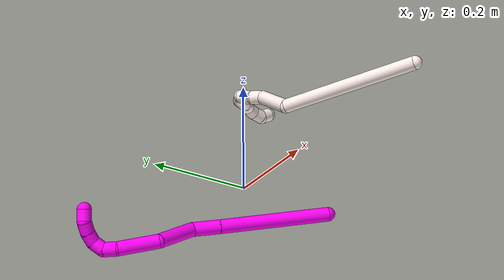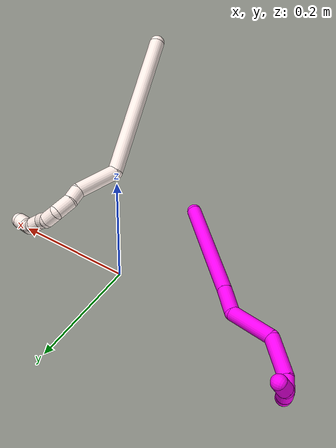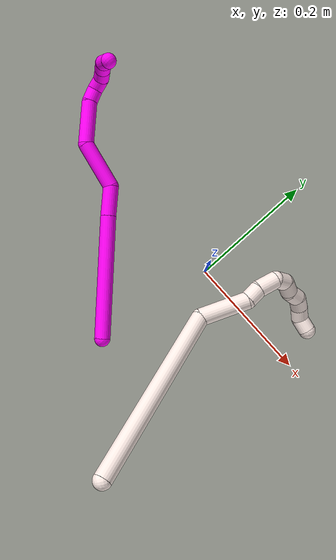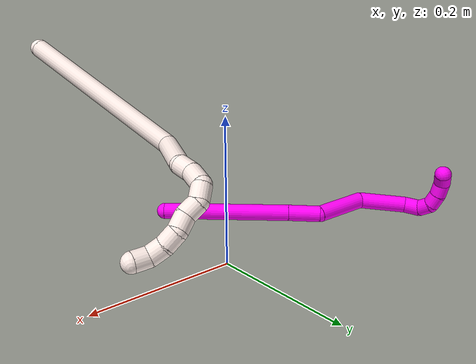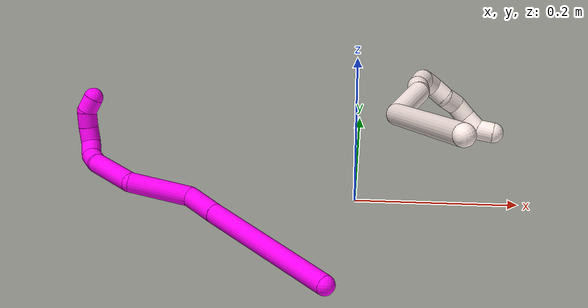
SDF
<sdf version="1.7">
 <world name="default">
  <model name="10">
   <static>0</static>
   <link name="10">
    <collision name="collision-cylinder-e_1_1_4">
     <pose>-0.062458 0.019303 0.072447 -0.260389 -0.694573 0.094715</pose>
     <geometry><cylinder><radius>0.0125</radius><length>0.195164</length></cylinder></geometry>
     <surface>
      <friction><ode><mu>1.16</mu><mu2>1.16</mu2><slip1>0</slip1><slip2>0</slip2></ode></friction>
      <contact><ode><kp>1e+06</kp><kd>1</kd><max_vel>0</max_vel><min_depth>0.001</min_depth></ode></contact>
     </surface>
    </collision>
    <visual name="visual-cylinder-e_1_1_4">
     <pose>-0.062458 0.019303 0.072447 -0.260389 -0.694573 0.094715</pose>
     <geometry><cylinder><radius>0.0125</radius><length>0.195164</length></cylinder></geometry>
     <material><ambient>1 0 0.964706 1</ambient></material>
    </visual>
    <collision name="collision-cylinder-e_2_4_5">
     <pose>-0.141263 0.043552 0.162419 -0.275137 -0.731566 0.105954</pose>
     <geometry><cylinder><radius>0.0125</radius><length>0.04894</length></cylinder></geometry>
     <surface>
      <friction><ode><mu>1.16</mu><mu2>1.16</mu2><slip1>0</slip1><slip2>0</slip2></ode></friction>
      <contact><ode><kp>1e+06</kp><kd>1</kd><max_vel>0</max_vel><min_depth>0.001</min_depth></ode></contact>
     </surface>
    </collision>
    <visual name="visual-cylinder-e_2_4_5">
     <pose>-0.141263 0.043552 0.162419 -0.275137 -0.731566 0.105954</pose>
     <geometry><cylinder><radius>0.0125</radius><length>0.04894</length></cylinder></geometry>
     <material><ambient>1 0 0.964706 1</ambient></material>
    </visual>
    <collision name="collision-cylinder-e_3_5_6">
     <pose>-0.162409 0.053745 0.218616 -0.134819 -0.122348 0.00827</pose>
     <geometry><cylinder><radius>0.0125</radius><length>0.078644</length></cylinder></geometry>
     <surface>
      <friction><ode><mu>1.16</mu><mu2>1.16</mu2><slip1>0</slip1><slip2>0</slip2></ode></friction>
      <contact><ode><kp>1e+06</kp><kd>1</kd><max_vel>0</max_vel><min_depth>0.001</min_depth></ode></contact>
     </surface>
    </collision>
    <visual name="visual-cylinder-e_3_5_6">
     <pose>-0.162409 0.053745 0.218616 -0.134819 -0.122348 0.00827</pose>
     <geometry><cylinder><radius>0.0125</radius><length>0.078644</length></cylinder></geometry>
     <material><ambient>1 0 0.964706 1</ambient></material>
    </visual>
    <collision name="collision-cylinder-e_4_6_7">
     <pose>-0.191465 0.063371 0.283358 -0.166471 -0.742486 0.064933</pose>
     <geometry><cylinder><radius>0.0125</radius><length>0.071754</length></cylinder></geometry>
     <surface>
      <friction><ode><mu>1.16</mu><mu2>1.16</mu2><slip1>0</slip1><slip2>0</slip2></ode></friction>
      <contact><ode><kp>1e+06</kp><kd>1</kd><max_vel>0</max_vel><min_depth>0.001</min_depth></ode></contact>
     </surface>
    </collision>
    <visual name="visual-cylinder-e_4_6_7">
     <pose>-0.191465 0.063371 0.283358 -0.166471 -0.742486 0.064933</pose>
     <geometry><cylinder><radius>0.0125</radius><length>0.071754</length></cylinder></geometry>
     <material><ambient>1 0 0.964706 1</ambient></material>
    </visual>
    <collision name="collision-cylinder-e_5_7_8">
     <pose>-0.225939 0.069617 0.315138 -0.31571 -1.03922 0.181614</pose>
     <geometry><cylinder><radius>0.0125</radius><length>0.023706</length></cylinder></geometry>
     <surface>
      <friction><ode><mu>1.16</mu><mu2>1.16</mu2><slip1>0</slip1><slip2>0</slip2></ode></friction>
      <contact><ode><kp>1e+06</kp><kd>1</kd><max_vel>0</max_vel><min_depth>0.001</min_depth></ode></contact>
     </surface>
    </collision>
    <visual name="visual-cylinder-e_5_7_8">
     <pose>-0.225939 0.069617 0.315138 -0.31571 -1.03922 0.181614</pose>
     <geometry><cylinder><radius>0.0125</radius><length>0.023706</length></cylinder></geometry>
     <material><ambient>1 0 0.964706 1</ambient></material>
    </visual>
    <collision name="collision-cylinder-e_6_8_9">
     <pose>-0.242948 0.078839 0.322841 -1.30638 -0.727831 0.567223</pose>
     <geometry><cylinder><radius>0.0125</radius><length>0.020418</length></cylinder></geometry>
     <surface>
      <friction><ode><mu>1.16</mu><mu2>1.16</mu2><slip1>0</slip1><slip2>0</slip2></ode></friction>
      <contact><ode><kp>1e+06</kp><kd>1</kd><max_vel>0</max_vel><min_depth>0.001</min_depth></ode></contact>
     </surface>
    </collision>
    <visual name="visual-cylinder-e_6_8_9">
     <pose>-0.242948 0.078839 0.322841 -1.30638 -0.727831 0.567223</pose>
     <geometry><cylinder><radius>0.0125</radius><length>0.020418</length></cylinder></geometry>
     <material><ambient>1 0 0.964706 1</ambient></material>
    </visual>
    <collision name="collision-cylinder-e_7_9_10">
     <pose>-0.251054 0.096026 0.326948 -1.35891 -0.129963 0.105031</pose>
     <geometry><cylinder><radius>0.0125</radius><length>0.020279</length></cylinder></geometry>
     <surface>
      <friction><ode><mu>1.16</mu><mu2>1.16</mu2><slip1>0</slip1><slip2>0</slip2></ode></friction>
      <contact><ode><kp>1e+06</kp><kd>1</kd><max_vel>0</max_vel><min_depth>0.001</min_depth></ode></contact>
     </surface>
    </collision>
    <visual name="visual-cylinder-e_7_9_10">
     <pose>-0.251054 0.096026 0.326948 -1.35891 -0.129963 0.105031</pose>
     <geometry><cylinder><radius>0.0125</radius><length>0.020279</length></cylinder></geometry>
     <material><ambient>1 0 0.964706 1</ambient></material>
    </visual>
    <collision name="collision-cylinder-e_8_10_11">
     <pose>-0.251593 0.116205 0.330028 -1.47772 0.074364 -0.067751</pose>
     <geometry><cylinder><radius>0.0125</radius><length>0.020847</length></cylinder></geometry>
     <surface>
      <friction><ode><mu>1.16</mu><mu2>1.16</mu2><slip1>0</slip1><slip2>0</slip2></ode></friction>
      <contact><ode><kp>1e+06</kp><kd>1</kd><max_vel>0</max_vel><min_depth>0.001</min_depth></ode></contact>
     </surface>
    </collision>
    <visual name="visual-cylinder-e_8_10_11">
     <pose>-0.251593 0.116205 0.330028 -1.47772 0.074364 -0.067751</pose>
     <geometry><cylinder><radius>0.0125</radius><length>0.020847</length></cylinder></geometry>
     <material><ambient>1 0 0.964706 1</ambient></material>
    </visual>
    <collision name="collision-cylinder-e_9_11_2">
     <pose>-0.250978 0.135736 0.326731 -2.00551 -0.015692 0.024587</pose>
     <geometry><cylinder><radius>0.0125</radius><length>0.020249</length></cylinder></geometry>
     <surface>
      <friction><ode><mu>1.16</mu><mu2>1.16</mu2><slip1>0</slip1><slip2>0</slip2></ode></friction>
      <contact><ode><kp>1e+06</kp><kd>1</kd><max_vel>0</max_vel><min_depth>0.001</min_depth></ode></contact>
     </surface>
    </collision>
    <visual name="visual-cylinder-e_9_11_2">
     <pose>-0.250978 0.135736 0.326731 -2.00551 -0.015692 0.024587</pose>
     <geometry><cylinder><radius>0.0125</radius><length>0.020249</length></cylinder></geometry>
     <material><ambient>1 0 0.964706 1</ambient></material>
    </visual>
    <collision name="collision-sphere-2">
     <pose>-0.251137 0.144918 0.322468 0 -0 0</pose>
     <geometry><sphere><radius>0.0125</radius></sphere></geometry>
     <surface>
      <friction><ode><mu>1.16</mu><mu2>1.16</mu2><slip1>0</slip1><slip2>0</slip2></ode></friction>
      <contact><ode><kp>1e+06</kp><kd>1</kd><max_vel>0</max_vel><min_depth>0.001</min_depth></ode></contact>
     </surface>
    </collision>
    <visual name="visual-sphere-2">
     <pose>-0.251137 0.144918 0.322468 0 -0 0</pose>
     <geometry><sphere><radius>0.0125</radius></sphere></geometry>
     <material><ambient>1 0 0.964706 1</ambient></material>
    </visual>
    <collision name="collision-sphere-11">
     <pose>-0.250819 0.126554 0.330994 0 -0 0</pose>
     <geometry><sphere><radius>0.0125</radius></sphere></geometry>
     <surface>
      <friction><ode><mu>1.16</mu><mu2>1.16</mu2><slip1>0</slip1><slip2>0</slip2></ode></friction>
      <contact><ode><kp>1e+06</kp><kd>1</kd><max_vel>0</max_vel><min_depth>0.001</min_depth></ode></contact>
     </surface>
    </collision>
    <visual name="visual-sphere-11">
     <pose>-0.250819 0.126554 0.330994 0 -0 0</pose>
     <geometry><sphere><radius>0.0125</radius></sphere></geometry>
     <material><ambient>1 0 0.964706 1</ambient></material>
    </visual>
    <collision name="collision-sphere-10">
     <pose>-0.252368 0.105855 0.329062 0 -0 0</pose>
     <geometry><sphere><radius>0.0125</radius></sphere></geometry>
     <surface>
      <friction><ode><mu>1.16</mu><mu2>1.16</mu2><slip1>0</slip1><slip2>0</slip2></ode></friction>
      <contact><ode><kp>1e+06</kp><kd>1</kd><max_vel>0</max_vel><min_depth>0.001</min_depth></ode></contact>
     </surface>
    </collision>
    <visual name="visual-sphere-10">
     <pose>-0.252368 0.105855 0.329062 0 -0 0</pose>
     <geometry><sphere><radius>0.0125</radius></sphere></geometry>
     <material><ambient>1 0 0.964706 1</ambient></material>
    </visual>
    <collision name="collision-sphere-9">
     <pose>-0.24974 0.086197 0.324833 0 -0 0</pose>
     <geometry><sphere><radius>0.0125</radius></sphere></geometry>
     <surface>
      <friction><ode><mu>1.16</mu><mu2>1.16</mu2><slip1>0</slip1><slip2>0</slip2></ode></friction>
      <contact><ode><kp>1e+06</kp><kd>1</kd><max_vel>0</max_vel><min_depth>0.001</min_depth></ode></contact>
     </surface>
    </collision>
    <visual name="visual-sphere-9">
     <pose>-0.24974 0.086197 0.324833 0 -0 0</pose>
     <geometry><sphere><radius>0.0125</radius></sphere></geometry>
     <material><ambient>1 0 0.964706 1</ambient></material>
    </visual>
    <collision name="collision-sphere-4">
     <pose>-0.124916 0.038605 0.144895 0 -0 0</pose>
     <geometry><sphere><radius>0.0125</radius></sphere></geometry>
     <surface>
      <friction><ode><mu>1.16</mu><mu2>1.16</mu2><slip1>0</slip1><slip2>0</slip2></ode></friction>
      <contact><ode><kp>1e+06</kp><kd>1</kd><max_vel>0</max_vel><min_depth>0.001</min_depth></ode></contact>
     </surface>
    </collision>
    <visual name="visual-sphere-4">
     <pose>-0.124916 0.038605 0.144895 0 -0 0</pose>
     <geometry><sphere><radius>0.0125</radius></sphere></geometry>
     <material><ambient>1 0 0.964706 1</ambient></material>
    </visual>
    <collision name="collision-sphere-1">
     <geometry><sphere><radius>0.0125</radius></sphere></geometry>
     <surface>
      <friction><ode><mu>1.16</mu><mu2>1.16</mu2><slip1>0</slip1><slip2>0</slip2></ode></friction>
      <contact><ode><kp>1e+06</kp><kd>1</kd><max_vel>0</max_vel><min_depth>0.001</min_depth></ode></contact>
     </surface>
    </collision>
    <visual name="visual-sphere-1">
     <geometry><sphere><radius>0.0125</radius></sphere></geometry>
     <material><ambient>1 0 0.964706 1</ambient></material>
    </visual>
    <collision name="collision-sphere-8">
     <pose>-0.236157 0.071482 0.320849 0 -0 0</pose>
     <geometry><sphere><radius>0.0125</radius></sphere></geometry>
     <surface>
      <friction><ode><mu>1.16</mu><mu2>1.16</mu2><slip1>0</slip1><slip2>0</slip2></ode></friction>
      <contact><ode><kp>1e+06</kp><kd>1</kd><max_vel>0</max_vel><min_depth>0.001</min_depth></ode></contact>
     </surface>
    </collision>
    <visual name="visual-sphere-8">
     <pose>-0.236157 0.071482 0.320849 0 -0 0</pose>
     <geometry><sphere><radius>0.0125</radius></sphere></geometry>
     <material><ambient>1 0 0.964706 1</ambient></material>
    </visual>
    <collision name="collision-sphere-5">
     <pose>-0.15761 0.048499 0.179943 0 -0 0</pose>
     <geometry><sphere><radius>0.0125</radius></sphere></geometry>
     <surface>
      <friction><ode><mu>1.16</mu><mu2>1.16</mu2><slip1>0</slip1><slip2>0</slip2></ode></friction>
      <contact><ode><kp>1e+06</kp><kd>1</kd><max_vel>0</max_vel><min_depth>0.001</min_depth></ode></contact>
     </surface>
    </collision>
    <visual name="visual-sphere-5">
     <pose>-0.15761 0.048499 0.179943 0 -0 0</pose>
     <geometry><sphere><radius>0.0125</radius></sphere></geometry>
     <material><ambient>1 0 0.964706 1</ambient></material>
    </visual>
    <collision name="collision-sphere-6">
     <pose>-0.167207 0.058991 0.25729 0 -0 0</pose>
     <geometry><sphere><radius>0.0125</radius></sphere></geometry>
     <surface>
      <friction><ode><mu>1.16</mu><mu2>1.16</mu2><slip1>0</slip1><slip2>0</slip2></ode></friction>
      <contact><ode><kp>1e+06</kp><kd>1</kd><max_vel>0</max_vel><min_depth>0.001</min_depth></ode></contact>
     </surface>
    </collision>
    <visual name="visual-sphere-6">
     <pose>-0.167207 0.058991 0.25729 0 -0 0</pose>
     <geometry><sphere><radius>0.0125</radius></sphere></geometry>
     <material><ambient>1 0 0.964706 1</ambient></material>
    </visual>
    <collision name="collision-sphere-7">
     <pose>-0.215722 0.067751 0.309427 0 -0 0</pose>
     <geometry><sphere><radius>0.0125</radius></sphere></geometry>
     <surface>
      <friction><ode><mu>1.16</mu><mu2>1.16</mu2><slip1>0</slip1><slip2>0</slip2></ode></friction>
      <contact><ode><kp>1e+06</kp><kd>1</kd><max_vel>0</max_vel><min_depth>0.001</min_depth></ode></contact>
     </surface>
    </collision>
    <visual name="visual-sphere-7">
     <pose>-0.215722 0.067751 0.309427 0 -0 0</pose>
     <geometry><sphere><radius>0.0125</radius></sphere></geometry>
     <material><ambient>1 0 0.964706 1</ambient></material>
    </visual>
    <inertial>
     <pose>-0.142697 0.050102 0.187603 0 -0 0</pose>
     <mass>0.5</mass>
     <inertia>
      <ixx>0.000592</ixx>
      <ixy>0</ixy>
      <ixz>0</ixz>
      <iyy>0.000764</iyy>
      <iyz>0</iyz>
      <izz>0.000323</izz>
     </inertia>
    </inertial>
   </link>
   <pose>-0.028858 -0.192361 0.011497 1.55316 -0.311933 -1.59884</pose>
  </model>
  <model name="11">
   <static>0</static>
   <link name="11">
    <collision name="collision-cylinder-e_1_1_4">
     <pose>0.023914 0.085203 -0.091109 -2.38968 0.189413 -0.472314</pose>
     <geometry><cylinder><radius>0.0125</radius><length>0.254026</length></cylinder></geometry>
     <surface>
      <friction><ode><mu>1.16</mu><mu2>1.16</mu2><slip1>0</slip1><slip2>0</slip2></ode></friction>
      <contact><ode><kp>1e+06</kp><kd>1</kd><max_vel>0</max_vel><min_depth>0.001</min_depth></ode></contact>
     </surface>
    </collision>
    <visual name="visual-cylinder-e_1_1_4">
     <pose>0.023914 0.085203 -0.091109 -2.38968 0.189413 -0.472314</pose>
     <geometry><cylinder><radius>0.0125</radius><length>0.254026</length></cylinder></geometry>
     <material><ambient>1 0.933333 0.909804 1</ambient></material>
    </visual>
    <collision name="collision-cylinder-e_2_4_5">
     <pose>0.053948 0.170632 -0.216909 -3.13506 0.174593 -3.06698</pose>
     <geometry><cylinder><radius>0.0125</radius><length>0.070452</length></cylinder></geometry>
     <surface>
      <friction><ode><mu>1.16</mu><mu2>1.16</mu2><slip1>0</slip1><slip2>0</slip2></ode></friction>
      <contact><ode><kp>1e+06</kp><kd>1</kd><max_vel>0</max_vel><min_depth>0.001</min_depth></ode></contact>
     </surface>
    </collision>
    <visual name="visual-cylinder-e_2_4_5">
     <pose>0.053948 0.170632 -0.216909 -3.13506 0.174593 -3.06698</pose>
     <geometry><cylinder><radius>0.0125</radius><length>0.070452</length></cylinder></geometry>
     <material><ambient>1 0.933333 0.909804 1</ambient></material>
    </visual>
    <collision name="collision-cylinder-e_3_5_6">
     <pose>0.063508 0.17568 -0.261151 -2.67417 0.311215 -1.16531</pose>
     <geometry><cylinder><radius>0.0125</radius><length>0.02248</length></cylinder></geometry>
     <surface>
      <friction><ode><mu>1.16</mu><mu2>1.16</mu2><slip1>0</slip1><slip2>0</slip2></ode></friction>
      <contact><ode><kp>1e+06</kp><kd>1</kd><max_vel>0</max_vel><min_depth>0.001</min_depth></ode></contact>
     </surface>
    </collision>
    <visual name="visual-cylinder-e_3_5_6">
     <pose>0.063508 0.17568 -0.261151 -2.67417 0.311215 -1.16531</pose>
     <geometry><cylinder><radius>0.0125</radius><length>0.02248</length></cylinder></geometry>
     <material><ambient>1 0.933333 0.909804 1</ambient></material>
    </visual>
    <collision name="collision-cylinder-e_4_6_7">
     <pose>0.069253 0.183511 -0.285 -2.93411 0.156293 -1.28972</pose>
     <geometry><cylinder><radius>0.0125</radius><length>0.029582</length></cylinder></geometry>
     <surface>
      <friction><ode><mu>1.16</mu><mu2>1.16</mu2><slip1>0</slip1><slip2>0</slip2></ode></friction>
      <contact><ode><kp>1e+06</kp><kd>1</kd><max_vel>0</max_vel><min_depth>0.001</min_depth></ode></contact>
     </surface>
    </collision>
    <visual name="visual-cylinder-e_4_6_7">
     <pose>0.069253 0.183511 -0.285 -2.93411 0.156293 -1.28972</pose>
     <geometry><cylinder><radius>0.0125</radius><length>0.029582</length></cylinder></geometry>
     <material><ambient>1 0.933333 0.909804 1</ambient></material>
    </visual>
    <collision name="collision-cylinder-e_5_7_8">
     <pose>0.065217 0.187747 -0.308066 -3.00267 -0.621195 2.71469</pose>
     <geometry><cylinder><radius>0.0125</radius><length>0.021778</length></cylinder></geometry>
     <surface>
      <friction><ode><mu>1.16</mu><mu2>1.16</mu2><slip1>0</slip1><slip2>0</slip2></ode></friction>
      <contact><ode><kp>1e+06</kp><kd>1</kd><max_vel>0</max_vel><min_depth>0.001</min_depth></ode></contact>
     </surface>
    </collision>
    <visual name="visual-cylinder-e_5_7_8">
     <pose>0.065217 0.187747 -0.308066 -3.00267 -0.621195 2.71469</pose>
     <geometry><cylinder><radius>0.0125</radius><length>0.021778</length></cylinder></geometry>
     <material><ambient>1 0.933333 0.909804 1</ambient></material>
    </visual>
    <collision name="collision-cylinder-e_6_8_9">
     <pose>0.049679 0.186558 -0.320175 2.51549 -1.14973 -2.21487</pose>
     <geometry><cylinder><radius>0.0125</radius><length>0.020163</length></cylinder></geometry>
     <surface>
      <friction><ode><mu>1.16</mu><mu2>1.16</mu2><slip1>0</slip1><slip2>0</slip2></ode></friction>
      <contact><ode><kp>1e+06</kp><kd>1</kd><max_vel>0</max_vel><min_depth>0.001</min_depth></ode></contact>
     </surface>
    </collision>
    <visual name="visual-cylinder-e_6_8_9">
     <pose>0.049679 0.186558 -0.320175 2.51549 -1.14973 -2.21487</pose>
     <geometry><cylinder><radius>0.0125</radius><length>0.020163</length></cylinder></geometry>
     <material><ambient>1 0.933333 0.909804 1</ambient></material>
    </visual>
    <collision name="collision-cylinder-e_7_9_10">
     <pose>0.033172 0.183432 -0.330552 3.0408 -0.801556 -2.90463</pose>
     <geometry><cylinder><radius>0.0125</radius><length>0.020339</length></cylinder></geometry>
     <surface>
      <friction><ode><mu>1.16</mu><mu2>1.16</mu2><slip1>0</slip1><slip2>0</slip2></ode></friction>
      <contact><ode><kp>1e+06</kp><kd>1</kd><max_vel>0</max_vel><min_depth>0.001</min_depth></ode></contact>
     </surface>
    </collision>
    <visual name="visual-cylinder-e_7_9_10">
     <pose>0.033172 0.183432 -0.330552 3.0408 -0.801556 -2.90463</pose>
     <geometry><cylinder><radius>0.0125</radius><length>0.020339</length></cylinder></geometry>
     <material><ambient>1 0.933333 0.909804 1</ambient></material>
    </visual>
    <collision name="collision-cylinder-e_8_10_11">
     <pose>0.016071 0.181465 -0.34006 2.6715 -1.29511 -2.52833</pose>
     <geometry><cylinder><radius>0.0125</radius><length>0.020358</length></cylinder></geometry>
     <surface>
      <friction><ode><mu>1.16</mu><mu2>1.16</mu2><slip1>0</slip1><slip2>0</slip2></ode></friction>
      <contact><ode><kp>1e+06</kp><kd>1</kd><max_vel>0</max_vel><min_depth>0.001</min_depth></ode></contact>
     </surface>
    </collision>
    <visual name="visual-cylinder-e_8_10_11">
     <pose>0.016071 0.181465 -0.34006 2.6715 -1.29511 -2.52833</pose>
     <geometry><cylinder><radius>0.0125</radius><length>0.020358</length></cylinder></geometry>
     <material><ambient>1 0.933333 0.909804 1</ambient></material>
    </visual>
    <collision name="collision-cylinder-e_9_11_12">
     <pose>-0.00345 0.177365 -0.343189 1.79837 -1.27911 -1.50449</pose>
     <geometry><cylinder><radius>0.0125</radius><length>0.020309</length></cylinder></geometry>
     <surface>
      <friction><ode><mu>1.16</mu><mu2>1.16</mu2><slip1>0</slip1><slip2>0</slip2></ode></friction>
      <contact><ode><kp>1e+06</kp><kd>1</kd><max_vel>0</max_vel><min_depth>0.001</min_depth></ode></contact>
     </surface>
    </collision>
    <visual name="visual-cylinder-e_9_11_12">
     <pose>-0.00345 0.177365 -0.343189 1.79837 -1.27911 -1.50449</pose>
     <geometry><cylinder><radius>0.0125</radius><length>0.020309</length></cylinder></geometry>
     <material><ambient>1 0.933333 0.909804 1</ambient></material>
    </visual>
    <collision name="collision-cylinder-e_10_12_2">
     <pose>-0.019382 0.167109 -0.347276 2.00409 -0.649927 -0.970135</pose>
     <geometry><cylinder><radius>0.0125</radius><length>0.020513</length></cylinder></geometry>
     <surface>
      <friction><ode><mu>1.16</mu><mu2>1.16</mu2><slip1>0</slip1><slip2>0</slip2></ode></friction>
      <contact><ode><kp>1e+06</kp><kd>1</kd><max_vel>0</max_vel><min_depth>0.001</min_depth></ode></contact>
     </surface>
    </collision>
    <visual name="visual-cylinder-e_10_12_2">
     <pose>-0.019382 0.167109 -0.347276 2.00409 -0.649927 -0.970135</pose>
     <geometry><cylinder><radius>0.0125</radius><length>0.020513</length></cylinder></geometry>
     <material><ambient>1 0.933333 0.909804 1</ambient></material>
    </visual>
    <collision name="collision-sphere-2">
     <pose>-0.025588 0.159698 -0.350705 0 -0 0</pose>
     <geometry><sphere><radius>0.0125</radius></sphere></geometry>
     <surface>
      <friction><ode><mu>1.16</mu><mu2>1.16</mu2><slip1>0</slip1><slip2>0</slip2></ode></friction>
      <contact><ode><kp>1e+06</kp><kd>1</kd><max_vel>0</max_vel><min_depth>0.001</min_depth></ode></contact>
     </surface>
    </collision>
    <visual name="visual-sphere-2">
     <pose>-0.025588 0.159698 -0.350705 0 -0 0</pose>
     <geometry><sphere><radius>0.0125</radius></sphere></geometry>
     <material><ambient>1 0.933333 0.909804 1</ambient></material>
    </visual>
    <collision name="collision-sphere-12">
     <pose>-0.013175 0.17452 -0.343848 0 -0 0</pose>
     <geometry><sphere><radius>0.0125</radius></sphere></geometry>
     <surface>
      <friction><ode><mu>1.16</mu><mu2>1.16</mu2><slip1>0</slip1><slip2>0</slip2></ode></friction>
      <contact><ode><kp>1e+06</kp><kd>1</kd><max_vel>0</max_vel><min_depth>0.001</min_depth></ode></contact>
     </surface>
    </collision>
    <visual name="visual-sphere-12">
     <pose>-0.013175 0.17452 -0.343848 0 -0 0</pose>
     <geometry><sphere><radius>0.0125</radius></sphere></geometry>
     <material><ambient>1 0.933333 0.909804 1</ambient></material>
    </visual>
    <collision name="collision-sphere-11">
     <pose>0.006276 0.18021 -0.34253 0 -0 0</pose>
     <geometry><sphere><radius>0.0125</radius></sphere></geometry>
     <surface>
      <friction><ode><mu>1.16</mu><mu2>1.16</mu2><slip1>0</slip1><slip2>0</slip2></ode></friction>
      <contact><ode><kp>1e+06</kp><kd>1</kd><max_vel>0</max_vel><min_depth>0.001</min_depth></ode></contact>
     </surface>
    </collision>
    <visual name="visual-sphere-11">
     <pose>0.006276 0.18021 -0.34253 0 -0 0</pose>
     <geometry><sphere><radius>0.0125</radius></sphere></geometry>
     <material><ambient>1 0.933333 0.909804 1</ambient></material>
    </visual>
    <collision name="collision-sphere-10">
     <pose>0.025866 0.18272 -0.33759 0 -0 0</pose>
     <geometry><sphere><radius>0.0125</radius></sphere></geometry>
     <surface>
      <friction><ode><mu>1.16</mu><mu2>1.16</mu2><slip1>0</slip1><slip2>0</slip2></ode></friction>
      <contact><ode><kp>1e+06</kp><kd>1</kd><max_vel>0</max_vel><min_depth>0.001</min_depth></ode></contact>
     </surface>
    </collision>
    <visual name="visual-sphere-10">
     <pose>0.025866 0.18272 -0.33759 0 -0 0</pose>
     <geometry><sphere><radius>0.0125</radius></sphere></geometry>
     <material><ambient>1 0.933333 0.909804 1</ambient></material>
    </visual>
    <collision name="collision-sphere-9">
     <pose>0.040478 0.184143 -0.323514 0 -0 0</pose>
     <geometry><sphere><radius>0.0125</radius></sphere></geometry>
     <surface>
      <friction><ode><mu>1.16</mu><mu2>1.16</mu2><slip1>0</slip1><slip2>0</slip2></ode></friction>
      <contact><ode><kp>1e+06</kp><kd>1</kd><max_vel>0</max_vel><min_depth>0.001</min_depth></ode></contact>
     </surface>
    </collision>
    <visual name="visual-sphere-9">
     <pose>0.040478 0.184143 -0.323514 0 -0 0</pose>
     <geometry><sphere><radius>0.0125</radius></sphere></geometry>
     <material><ambient>1 0.933333 0.909804 1</ambient></material>
    </visual>
    <collision name="collision-sphere-4">
     <pose>0.047829 0.170405 -0.182219 0 -0 0</pose>
     <geometry><sphere><radius>0.0125</radius></sphere></geometry>
     <surface>
      <friction><ode><mu>1.16</mu><mu2>1.16</mu2><slip1>0</slip1><slip2>0</slip2></ode></friction>
      <contact><ode><kp>1e+06</kp><kd>1</kd><max_vel>0</max_vel><min_depth>0.001</min_depth></ode></contact>
     </surface>
    </collision>
    <visual name="visual-sphere-4">
     <pose>0.047829 0.170405 -0.182219 0 -0 0</pose>
     <geometry><sphere><radius>0.0125</radius></sphere></geometry>
     <material><ambient>1 0.933333 0.909804 1</ambient></material>
    </visual>
    <collision name="collision-sphere-1">
     <geometry><sphere><radius>0.0125</radius></sphere></geometry>
     <surface>
      <friction><ode><mu>1.16</mu><mu2>1.16</mu2><slip1>0</slip1><slip2>0</slip2></ode></friction>
      <contact><ode><kp>1e+06</kp><kd>1</kd><max_vel>0</max_vel><min_depth>0.001</min_depth></ode></contact>
     </surface>
    </collision>
    <visual name="visual-sphere-1">
     <geometry><sphere><radius>0.0125</radius></sphere></geometry>
     <material><ambient>1 0.933333 0.909804 1</ambient></material>
    </visual>
    <collision name="collision-sphere-8">
     <pose>0.05888 0.188973 -0.316836 0 -0 0</pose>
     <geometry><sphere><radius>0.0125</radius></sphere></geometry>
     <surface>
      <friction><ode><mu>1.16</mu><mu2>1.16</mu2><slip1>0</slip1><slip2>0</slip2></ode></friction>
      <contact><ode><kp>1e+06</kp><kd>1</kd><max_vel>0</max_vel><min_depth>0.001</min_depth></ode></contact>
     </surface>
    </collision>
    <visual name="visual-sphere-8">
     <pose>0.05888 0.188973 -0.316836 0 -0 0</pose>
     <geometry><sphere><radius>0.0125</radius></sphere></geometry>
     <material><ambient>1 0.933333 0.909804 1</ambient></material>
    </visual>
    <collision name="collision-sphere-5">
     <pose>0.060067 0.170859 -0.251598 0 -0 0</pose>
     <geometry><sphere><radius>0.0125</radius></sphere></geometry>
     <surface>
      <friction><ode><mu>1.16</mu><mu2>1.16</mu2><slip1>0</slip1><slip2>0</slip2></ode></friction>
      <contact><ode><kp>1e+06</kp><kd>1</kd><max_vel>0</max_vel><min_depth>0.001</min_depth></ode></contact>
     </surface>
    </collision>
    <visual name="visual-sphere-5">
     <pose>0.060067 0.170859 -0.251598 0 -0 0</pose>
     <geometry><sphere><radius>0.0125</radius></sphere></geometry>
     <material><ambient>1 0.933333 0.909804 1</ambient></material>
    </visual>
    <collision name="collision-sphere-6">
     <pose>0.06695 0.180501 -0.270703 0 -0 0</pose>
     <geometry><sphere><radius>0.0125</radius></sphere></geometry>
     <surface>
      <friction><ode><mu>1.16</mu><mu2>1.16</mu2><slip1>0</slip1><slip2>0</slip2></ode></friction>
      <contact><ode><kp>1e+06</kp><kd>1</kd><max_vel>0</max_vel><min_depth>0.001</min_depth></ode></contact>
     </surface>
    </collision>
    <visual name="visual-sphere-6">
     <pose>0.06695 0.180501 -0.270703 0 -0 0</pose>
     <geometry><sphere><radius>0.0125</radius></sphere></geometry>
     <material><ambient>1 0.933333 0.909804 1</ambient></material>
    </visual>
    <collision name="collision-sphere-7">
     <pose>0.071555 0.18652 -0.299297 0 -0 0</pose>
     <geometry><sphere><radius>0.0125</radius></sphere></geometry>
     <surface>
      <friction><ode><mu>1.16</mu><mu2>1.16</mu2><slip1>0</slip1><slip2>0</slip2></ode></friction>
      <contact><ode><kp>1e+06</kp><kd>1</kd><max_vel>0</max_vel><min_depth>0.001</min_depth></ode></contact>
     </surface>
    </collision>
    <visual name="visual-sphere-7">
     <pose>0.071555 0.18652 -0.299297 0 -0 0</pose>
     <geometry><sphere><radius>0.0125</radius></sphere></geometry>
     <material><ambient>1 0.933333 0.909804 1</ambient></material>
    </visual>
    <inertial>
     <pose>0.032616 0.130697 -0.187263 0 -0 0</pose>
     <mass>0.5</mass>
     <inertia>
      <ixx>0.000546</ixx>
      <ixy>0</ixy>
      <ixz>0</ixz>
      <iyy>-0.001387</iyy>
      <iyz>0</iyz>
      <izz>-0.001209</izz>
     </inertia>
    </inertial>
   </link>
   <pose>0.111983 -0.280306 0.268603 -1.22601 -0.863857 2.37411</pose>
  </model>
 </world>
</sdf>
